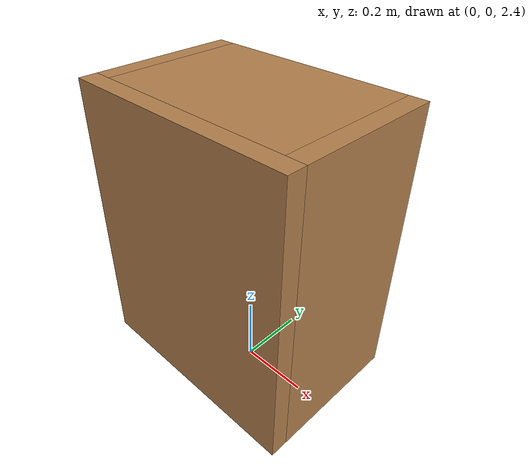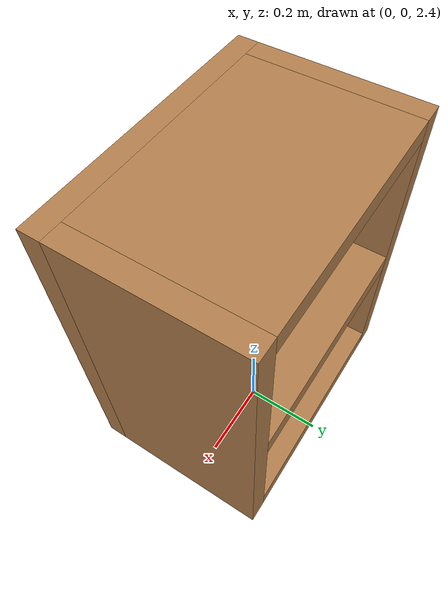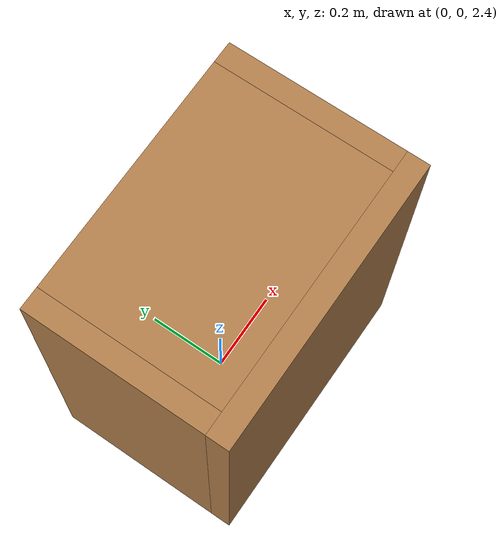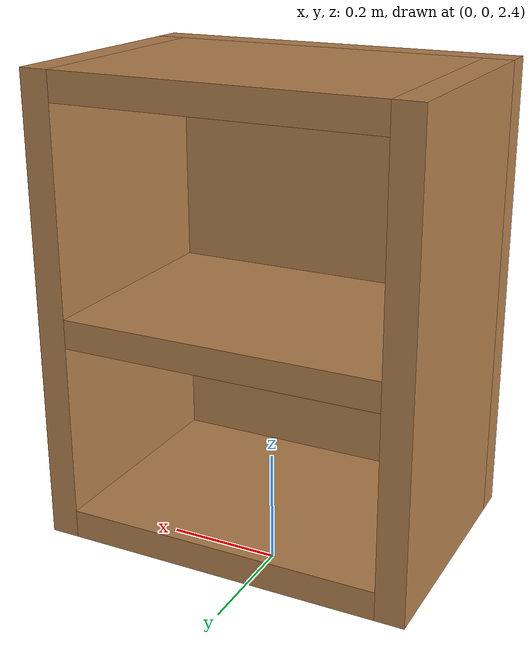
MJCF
<mujoco>
    <asset>
        <texture type="2d" name="wood" file="light_wood.png"/>
        <material name="wood_table_v2_mat" texture="wood" specular="0.5" shininess="0.5"/>
    </asset>
    <worldbody>
        <!-- shelf -->
        <body name="shelf" pos="0 0 2.5">
            <!-- Shelf Base -->
            <geom name="shelf_base_row1" type="box" size="0.275 0.2 0.025" material="wood_table_v2_mat" />
            <body name="shelf_row2" pos="0 0 0.35">
                <geom name="shelf_base_row2" type="box" size="0.275 0.2 0.025" material="wood_table_v2_mat" />
            </body>
            <body name="shelf_row3" pos="0 0 0.75">
                <geom name="shelf_base_row3" type="box" size="0.275 0.2 0.025" material="wood_table_v2_mat" />
            </body>

            <!-- Shelf columns -->
            <body name="shelf_column1" pos="-0.3 0. 0.375">
                <geom name="shelf_column1_geom" type="box" size="0.025 0.2 0.4" material="wood_table_v2_mat" />
            </body>
            <body name="shelf_column2" pos="0.3 0. 0.375">
                <geom name="shelf_column2_geom" type="box" size="0.025 0.2 0.4" material="wood_table_v2_mat" />
            </body>

            <!-- Shelf Back -->
            <body name="shelf_back" pos="0 -0.225 0.375">
                <geom name="shelf_back_geom" type="box" size="0.325 0.025 0.4" material="wood_table_v2_mat" />
            </body>

        </body>
    </worldbody>
</mujoco>
